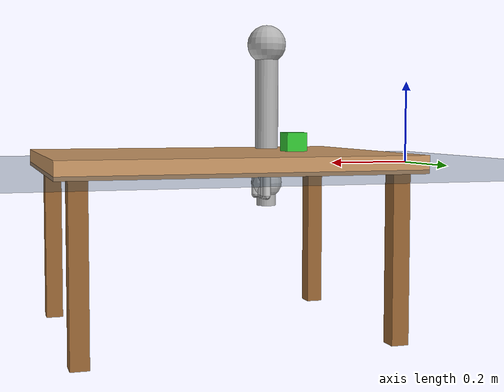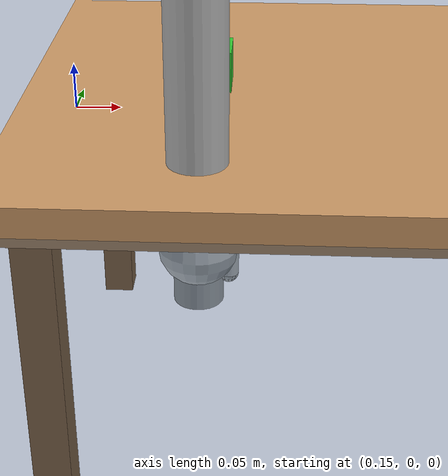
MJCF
<?xml version='1.0' encoding='utf-8'?>
<mujoco model="g1_simple">
  <compiler angle="radian" coordinate="local" />
  <option timestep="0.002" iterations="50" solver="Newton" tolerance="1e-10">
    <flag warmstart="enable" energy="enable" />
  </option>
  <size nconmax="100" njmax="1000" nstack="600000" />
  <asset>
    <texture type="skybox" builtin="flat" rgb1="0 0 0" rgb2="0 0 0" width="512" height="3072" />
    <texture type="2d" name="groundplane" builtin="checker" mark="edge" rgb1="0.2 0.3 0.4" rgb2="0.1 0.2 0.3" markrgb="0.8 0.8 0.8" width="300" height="300" />
    <material name="groundplane" texture="groundplane" texuniform="true" texrepeat="5 5" reflectance="0.2" />
  </asset>
  <worldbody>
    <light cutoff="100" diffuse="1 1 1" dir="-0 0 -1.3" directional="true" exponent="1" pos="0 0 1.3" specular=".1 .1 .1" />
    <geom name="floor" size="0 0 0.05" type="plane" material="groundplane" />

    <!-- Table -->
    <body name="table" pos="0.5 0 0.01">
      <geom name="table_top" type="box" size="0.4 0.3 0.02" rgba="0.8 0.6 0.4 1" pos="0 0 0" />
      <geom name="table_leg1" type="box" size="0.02 0.02 0.2" rgba="0.6 0.4 0.2 1" pos="0.35 0.25 -0.2" />
      <geom name="table_leg2" type="box" size="0.02 0.02 0.2" rgba="0.6 0.4 0.2 1" pos="-0.35 0.25 -0.2" />
      <geom name="table_leg3" type="box" size="0.02 0.02 0.2" rgba="0.6 0.4 0.2 1" pos="0.35 -0.25 -0.2" />
      <geom name="table_leg4" type="box" size="0.02 0.02 0.2" rgba="0.6 0.4 0.2 1" pos="-0.35 -0.25 -0.2" />
    </body>

    <!-- Cube à manipuler -->
    <body name="cube" pos="0.3 0 0.05">
      <joint name="cube_free" type="free" />
      <geom name="cube_geom" type="box" size="0.025 0.025 0.025" rgba="0.2 0.8 0.2 1" density="1000" friction="1 0.1 0.1" />
    </body>

    <!-- Robot G1 simplifié - Bras droit -->
    <body name="right_shoulder" pos="0.3 -0.2 0.3">
      <joint name="right_shoulder_pitch" type="hinge" axis="0 1 0" range="-3.14 3.14" />
      <joint name="right_shoulder_roll" type="hinge" axis="1 0 0" range="-3.14 3.14" />
      <joint name="right_shoulder_yaw" type="hinge" axis="0 0 1" range="-3.14 3.14" />
      <geom type="sphere" size="0.05" rgba="0.7 0.7 0.7 1" />

      <!-- Bras -->
      <body name="right_upper_arm" pos="0 0 -0.15">
        <joint name="right_elbow" type="hinge" axis="0 1 0" range="-3.14 3.14" />
        <geom type="cylinder" size="0.03 0.15" rgba="0.7 0.7 0.7 1" />

        <!-- Avant-bras -->
        <body name="right_forearm" pos="0 0 -0.15">
          <joint name="right_wrist_roll" type="hinge" axis="1 0 0" range="-3.14 3.14" />
          <joint name="right_wrist_pitch" type="hinge" axis="0 1 0" range="-3.14 3.14" />
          <joint name="right_wrist_yaw" type="hinge" axis="0 0 1" range="-3.14 3.14" />
          <geom type="cylinder" size="0.025 0.12" rgba="0.7 0.7 0.7 1" />

          <!-- Main -->
          <body name="right_hand" pos="0 0 -0.06">
            <geom type="sphere" size="0.04" rgba="0.8 0.8 0.8 1" />

            <!-- Doigts -->
            <body name="right_thumb" pos="0.03 0 0">
              <joint name="right_thumb_joint_0" type="hinge" axis="0 1 0" range="0 1.5" />
              <geom type="capsule" size="0.01 0.03" rgba="0.8 0.8 0.8 1" />
              <body name="right_thumb_tip" pos="0 0 -0.03">
                <joint name="right_thumb_joint_1" type="hinge" axis="0 1 0" range="0 1.5" />
                <geom type="sphere" size="0.01" rgba="0.8 0.8 0.8 1" />
                <site name="right_thumb_tip_site" pos="0 0 0" size="0.005" type="sphere" />
              </body>
            </body>

            <body name="right_index" pos="0.02 0.02 0">
              <joint name="right_index_joint_0" type="hinge" axis="0 1 0" range="0 1.5" />
              <geom type="capsule" size="0.01 0.03" rgba="0.8 0.8 0.8 1" />
              <body name="right_index_tip" pos="0 0 -0.03">
                <joint name="right_index_joint_1" type="hinge" axis="0 1 0" range="0 1.5" />
                <geom type="sphere" size="0.01" rgba="0.8 0.8 0.8 1" />
                <site name="right_index_tip_site" pos="0 0 0" size="0.005" type="sphere" />
              </body>
            </body>

            <body name="right_middle" pos="0.02 0.04 0">
              <joint name="right_middle_joint_0" type="hinge" axis="0 1 0" range="0 1.5" />
              <geom type="capsule" size="0.01 0.03" rgba="0.8 0.8 0.8 1" />
              <body name="right_middle_tip" pos="0 0 -0.03">
                <joint name="right_middle_joint_1" type="hinge" axis="0 1 0" range="0 1.5" />
                <geom type="sphere" size="0.01" rgba="0.8 0.8 0.8 1" />
                <site name="right_middle_tip_site" pos="0 0 0" size="0.005" type="sphere" />
              </body>
            </body>

            <body name="right_ring" pos="0.02 0.06 0">
              <joint name="right_ring_joint_0" type="hinge" axis="0 1 0" range="0 1.5" />
              <geom type="capsule" size="0.01 0.03" rgba="0.8 0.8 0.8 1" />
              <body name="right_ring_tip" pos="0 0 -0.03">
                <joint name="right_ring_joint_1" type="hinge" axis="0 1 0" range="0 1.5" />
                <geom type="sphere" size="0.01" rgba="0.8 0.8 0.8 1" />
                <site name="right_ring_tip_site" pos="0 0 0" size="0.005" type="sphere" />
              </body>
            </body>

            <!-- Capteurs de force sur les doigts -->
            <site name="right_thumb_force_sensor_0" pos="0.03 0 0" size="0.01" type="sphere" />
            <site name="right_thumb_force_sensor_1" pos="0.03 0 0" size="0.01" type="sphere" />
            <site name="right_thumb_force_sensor_2" pos="0.03 0 0" size="0.01" type="sphere" />
            <site name="right_index_force_sensor_0" pos="0.02 0.02 0" size="0.01" type="sphere" />
            <site name="right_index_force_sensor_1" pos="0.02 0.02 0" size="0.01" type="sphere" />
            <site name="right_index_force_sensor_2" pos="0.02 0.02 0" size="0.01" type="sphere" />
            <site name="right_middle_force_sensor_0" pos="0.02 0.04 0" size="0.01" type="sphere" />
            <site name="right_middle_force_sensor_1" pos="0.02 0.04 0" size="0.01" type="sphere" />
            <site name="right_middle_force_sensor_2" pos="0.02 0.04 0" size="0.01" type="sphere" />
            <site name="right_ring_force_sensor_0" pos="0.02 0.06 0" size="0.01" type="sphere" />
            <site name="right_ring_force_sensor_1" pos="0.02 0.06 0" size="0.01" type="sphere" />
            <site name="right_ring_force_sensor_2" pos="0.02 0.06 0" size="0.01" type="sphere" />
          </body>
        </body>
      </body>
    </body>
  </worldbody>

  <actuator>
    <!-- Bras droit -->
    <position name="act_right_shoulder_pitch" joint="right_shoulder_pitch" gear="1" kp="100" kv="10" />
    <position name="act_right_shoulder_roll" joint="right_shoulder_roll" gear="1" kp="100" kv="10" />
    <position name="act_right_shoulder_yaw" joint="right_shoulder_yaw" gear="1" kp="100" kv="10" />
    <position name="act_right_elbow" joint="right_elbow" gear="1" kp="100" kv="10" />
    <position name="act_right_wrist_roll" joint="right_wrist_roll" gear="1" kp="100" kv="10" />
    <position name="act_right_wrist_pitch" joint="right_wrist_pitch" gear="1" kp="100" kv="10" />
    <position name="act_right_wrist_yaw" joint="right_wrist_yaw" gear="1" kp="100" kv="10" />

    <!-- Doigts -->
    <position name="act_right_thumb_joint_0" joint="right_thumb_joint_0" gear="1" kp="100" kv="10" />
    <position name="act_right_thumb_joint_1" joint="right_thumb_joint_1" gear="1" kp="100" kv="10" />
    <position name="act_right_index_joint_0" joint="right_index_joint_0" gear="1" kp="100" kv="10" />
    <position name="act_right_index_joint_1" joint="right_index_joint_1" gear="1" kp="100" kv="10" />
    <position name="act_right_middle_joint_0" joint="right_middle_joint_0" gear="1" kp="100" kv="10" />
    <position name="act_right_middle_joint_1" joint="right_middle_joint_1" gear="1" kp="100" kv="10" />
    <position name="act_right_ring_joint_0" joint="right_ring_joint_0" gear="1" kp="100" kv="10" />
    <position name="act_right_ring_joint_1" joint="right_ring_joint_1" gear="1" kp="100" kv="10" />
  </actuator>

  <sensor>
    <!-- Capteurs tactiles -->
    <touch name="right_thumb_tip_sensor" site="right_thumb_tip_site" />
    <touch name="right_index_tip_sensor" site="right_index_tip_site" />
    <touch name="right_middle_tip_sensor" site="right_middle_tip_site" />
    <touch name="right_ring_tip_sensor" site="right_ring_tip_site" />

    <!-- Capteurs de force -->
    <force name="right_thumb_force_sensor_0" site="right_thumb_force_sensor_0" />
    <force name="right_thumb_force_sensor_1" site="right_thumb_force_sensor_1" />
    <force name="right_thumb_force_sensor_2" site="right_thumb_force_sensor_2" />
    <force name="right_index_force_sensor_0" site="right_index_force_sensor_0" />
    <force name="right_index_force_sensor_1" site="right_index_force_sensor_1" />
    <force name="right_index_force_sensor_2" site="right_index_force_sensor_2" />
    <force name="right_middle_force_sensor_0" site="right_middle_force_sensor_0" />
    <force name="right_middle_force_sensor_1" site="right_middle_force_sensor_1" />
    <force name="right_middle_force_sensor_2" site="right_middle_force_sensor_2" />
    <force name="right_ring_force_sensor_0" site="right_ring_force_sensor_0" />
    <force name="right_ring_force_sensor_1" site="right_ring_force_sensor_1" />
    <force name="right_ring_force_sensor_2" site="right_ring_force_sensor_2" />

    <!-- Capteurs de position et vitesse -->
    <jointpos name="pos_right_shoulder_pitch" joint="right_shoulder_pitch" />
    <jointpos name="pos_right_shoulder_roll" joint="right_shoulder_roll" />
    <jointpos name="pos_right_shoulder_yaw" joint="right_shoulder_yaw" />
    <jointpos name="pos_right_elbow" joint="right_elbow" />
    <jointpos name="pos_right_wrist_roll" joint="right_wrist_roll" />
    <jointpos name="pos_right_wrist_pitch" joint="right_wrist_pitch" />
    <jointpos name="pos_right_wrist_yaw" joint="right_wrist_yaw" />
    <jointpos name="pos_right_thumb_joint_0" joint="right_thumb_joint_0" />
    <jointpos name="pos_right_thumb_joint_1" joint="right_thumb_joint_1" />
    <jointpos name="pos_right_index_joint_0" joint="right_index_joint_0" />
    <jointpos name="pos_right_index_joint_1" joint="right_index_joint_1" />
    <jointpos name="pos_right_middle_joint_0" joint="right_middle_joint_0" />
    <jointpos name="pos_right_middle_joint_1" joint="right_middle_joint_1" />
    <jointpos name="pos_right_ring_joint_0" joint="right_ring_joint_0" />
    <jointpos name="pos_right_ring_joint_1" joint="right_ring_joint_1" />

    <jointvel name="vel_right_shoulder_pitch" joint="right_shoulder_pitch" />
    <jointvel name="vel_right_shoulder_roll" joint="right_shoulder_roll" />
    <jointvel name="vel_right_shoulder_yaw" joint="right_shoulder_yaw" />
    <jointvel name="vel_right_elbow" joint="right_elbow" />
    <jointvel name="vel_right_wrist_roll" joint="right_wrist_roll" />
    <jointvel name="vel_right_wrist_pitch" joint="right_wrist_pitch" />
    <jointvel name="vel_right_wrist_yaw" joint="right_wrist_yaw" />
    <jointvel name="vel_right_thumb_joint_0" joint="right_thumb_joint_0" />
    <jointvel name="vel_right_thumb_joint_1" joint="right_thumb_joint_1" />
    <jointvel name="vel_right_index_joint_0" joint="right_index_joint_0" />
    <jointvel name="vel_right_index_joint_1" joint="right_index_joint_1" />
    <jointvel name="vel_right_middle_joint_0" joint="right_middle_joint_0" />
    <jointvel name="vel_right_middle_joint_1" joint="right_middle_joint_1" />
    <jointvel name="vel_right_ring_joint_0" joint="right_ring_joint_0" />
    <jointvel name="vel_right_ring_joint_1" joint="right_ring_joint_1" />
  </sensor>
</mujoco>
